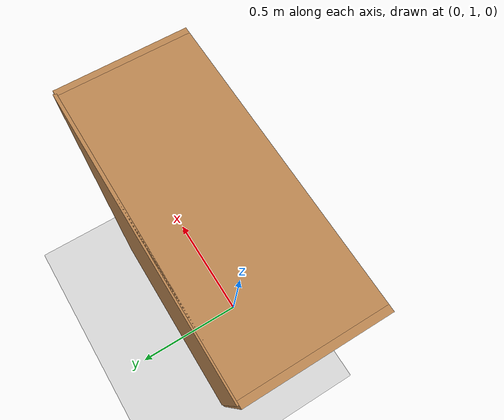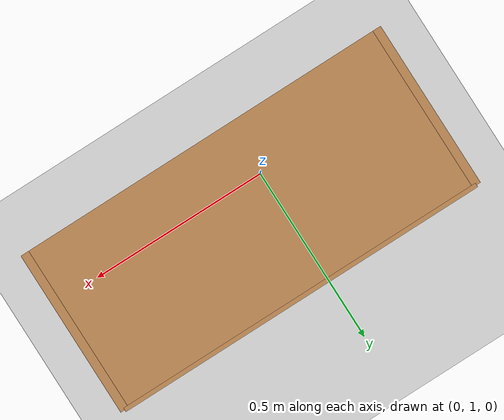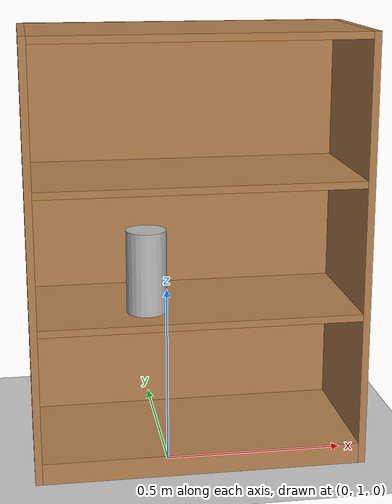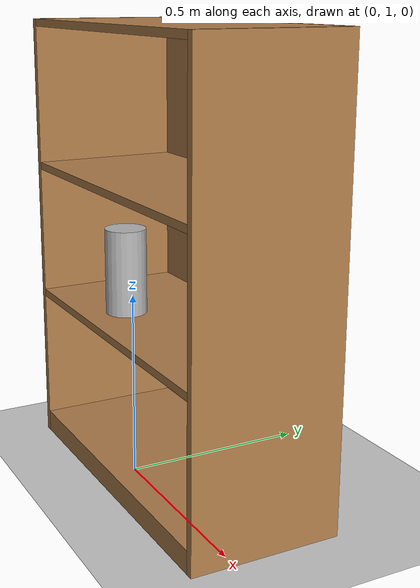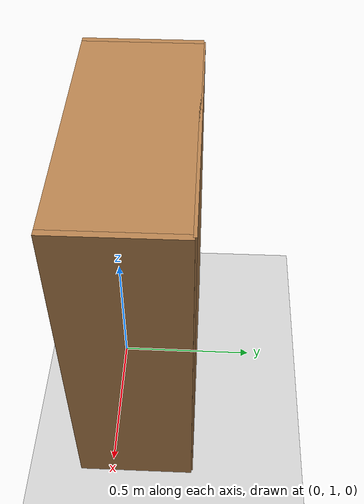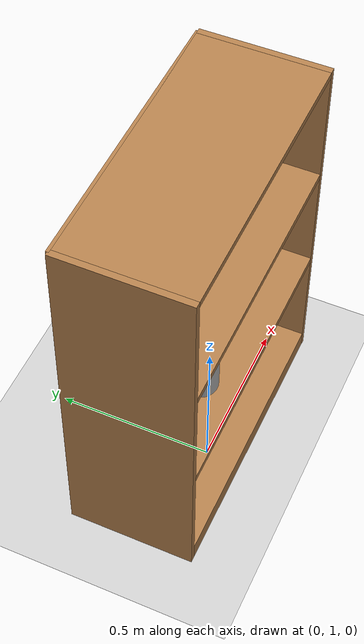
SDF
<sdf version="1.7">
 <world name="default">
  <model name="ground_plane">
   <static>1</static>
   <link name="link">
    <collision name="collision">
     <geometry><plane><normal>0 0 1</normal><size>100 100</size></plane></geometry>
     <surface>
      <contact><collide_bitmask>65535</collide_bitmask></contact>
      <friction><ode><mu>100</mu><mu2>50</mu2></ode></friction>
     </surface>
    </collision>
    <visual name="visual">
     <cast_shadows>0</cast_shadows>
     <geometry><plane><normal>0 0 1</normal><size>100 100</size></plane></geometry>
     <material>
      <script><uri>file://media/materials/scripts/gazebo.material</uri><name>Gazebo/Grey</name></script>
     </material>
    </visual>
   </link>
  </model>
  <gravity>0 0 -9.8</gravity>
  <magnetic_field>6e-06 2.3e-05 -4.2e-05</magnetic_field>
  <atmosphere type="adiabatic"/>
  <physics type="ode">
   <max_step_size>0.001</max_step_size>
   <real_time_factor>1</real_time_factor>
   <real_time_update_rate>1000</real_time_update_rate>
  </physics>
  <scene><ambient>0.4 0.4 0.4 1</ambient><background>0.7 0.7 0.7 1</background><shadows>1</shadows></scene>
  <spherical_coordinates>
   <surface_model>EARTH_WGS84</surface_model>
   <latitude_deg>0</latitude_deg>
   <longitude_deg>0</longitude_deg>
   <elevation>0</elevation>
   <heading_deg>0</heading_deg>
  </spherical_coordinates>
  <model name="bookshelf">
   <static>1</static>
   <link name="link">
    <inertial><mass>1</mass></inertial>
    <collision name="back">
     <pose>0 0.005 0.6 0 -0 0</pose>
     <geometry><box><size>0.9 0.01 1.2</size></box></geometry>
    </collision>
    <visual name="visual1">
     <pose>0 0.005 0.6 0 -0 0</pose>
     <geometry><box><size>0.9 0.01 1.2</size></box></geometry>
     <material>
      <script><uri>file://media/materials/scripts/gazebo.material</uri><name>Gazebo/Wood</name></script>
     </material>
    </visual>
    <collision name="left_side">
     <pose>0.45 -0.195 0.6 0 -0 0</pose>
     <geometry><box><size>0.02 0.4 1.2</size></box></geometry>
    </collision>
    <visual name="visual2">
     <pose>0.45 -0.195 0.6 0 -0 0</pose>
     <geometry><box><size>0.02 0.4 1.2</size></box></geometry>
     <material>
      <script><uri>file://media/materials/scripts/gazebo.material</uri><name>Gazebo/Wood</name></script>
     </material>
    </visual>
    <collision name="right_side">
     <pose>-0.45 -0.195 0.6 0 -0 0</pose>
     <geometry><box><size>0.02 0.4 1.2</size></box></geometry>
    </collision>
    <visual name="visual3">
     <pose>-0.45 -0.195 0.6 0 -0 0</pose>
     <geometry><box><size>0.02 0.4 1.2</size></box></geometry>
     <material>
      <script><uri>file://media/materials/scripts/gazebo.material</uri><name>Gazebo/Wood</name></script>
     </material>
    </visual>
    <collision name="bottom">
     <pose>0 -0.195 0.03 0 -0 0</pose>
     <geometry><box><size>0.88 0.4 0.06</size></box></geometry>
    </collision>
    <visual name="visual4">
     <pose>0 -0.195 0.03 0 -0 0</pose>
     <geometry><box><size>0.88 0.4 0.06</size></box></geometry>
     <material>
      <script><uri>file://media/materials/scripts/gazebo.material</uri><name>Gazebo/Wood</name></script>
     </material>
    </visual>
    <collision name="top">
     <pose>0 -0.195 1.19 0 -0 0</pose>
     <geometry><box><size>0.88 0.4 0.02</size></box></geometry>
    </collision>
    <visual name="visual5">
     <pose>0 -0.195 1.19 0 -0 0</pose>
     <geometry><box><size>0.88 0.4 0.02</size></box></geometry>
     <material>
      <script><uri>file://media/materials/scripts/gazebo.material</uri><name>Gazebo/Wood</name></script>
     </material>
    </visual>
    <collision name="low_shelf">
     <pose>0 -0.195 0.43 0 -0 0</pose>
     <geometry><box><size>0.88 0.4 0.02</size></box></geometry>
    </collision>
    <visual name="visual6">
     <pose>0 -0.195 0.43 0 -0 0</pose>
     <geometry><box><size>0.88 0.4 0.02</size></box></geometry>
     <material>
      <script><uri>file://media/materials/scripts/gazebo.material</uri><name>Gazebo/Wood</name></script>
     </material>
    </visual>
    <collision name="high_shelf">
     <pose>0 -0.195 0.8 0 -0 0</pose>
     <geometry><box><size>0.88 0.4 0.02</size></box></geometry>
    </collision>
    <visual name="visual7">
     <pose>0 -0.195 0.8 0 -0 0</pose>
     <geometry><box><size>0.88 0.4 0.02</size></box></geometry>
     <material>
      <script><uri>file://media/materials/scripts/gazebo.material</uri><name>Gazebo/Wood</name></script>
     </material>
    </visual>
   </link>
   <pose>0.084001 1.28079 0 0 -0 0</pose>
  </model>
  <model name="beer">
   <link name="link">
    <pose>0 0 0.115 0 -0 0</pose>
    <inertial>
     <mass>0.39</mass>
     <inertia><ixx>0.00058</ixx><ixy>0</ixy><ixz>0</ixz><iyy>0.00058</iyy><iyz>0</iyz><izz>0.00019</izz></inertia>
    </inertial>
    <collision name="collision">
     <geometry><cylinder><radius>0.055</radius><length>0.23</length></cylinder></geometry>
    </collision>
    <visual name="visual">
     <geometry><cylinder><radius>0.055</radius><length>0.23</length></cylinder></geometry>
     <material>
      <script>
       <uri>model://beer/materials/scripts</uri>
       <uri>model://beer/materials/textures</uri>
       <name>Beer/Diffuse</name>
      </script>
     </material>
    </visual>
   </link>
   <pose>-0.05431 1.00632 0.440001 2.7e-05 5e-06 0.42372</pose>
  </model>
  <light name="test_light" type="spot">
   <pose>0.836428 0.679132 1 0 -0 0</pose>
   <diffuse>0.5 0.5 0.5 1</diffuse>
   <specular>0.1 0.1 0.1 1</specular>
   <direction>0 0 -1</direction>
   <attenuation>
    <range>20</range>
    <constant>0.5</constant>
    <linear>0.01</linear>
    <quadratic>0.001</quadratic>
   </attenuation>
   <cast_shadows>0</cast_shadows>
   <spot><inner_angle>0.6</inner_angle><outer_angle>1</outer_angle><falloff>1</falloff></spot>
  </light>
 </world>
</sdf>
